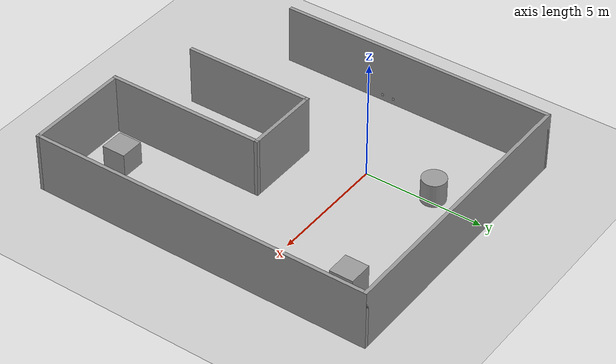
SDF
<sdf version="1.7">
 <world name="default">
  <light name="sun" type="directional">
   <pose>0 0 10 0 -0 0</pose>
   <diffuse>0.8 0.8 0.8 1</diffuse>
   <specular>0.2 0.2 0.2 1</specular>
   <attenuation>
    <range>1000</range>
    <constant>0.9</constant>
    <linear>0.01</linear>
    <quadratic>0.001</quadratic>
   </attenuation>
   <direction>-0.5 0.1 -0.9</direction>
   <spot><inner_angle>0</inner_angle><outer_angle>0</outer_angle><falloff>0</falloff></spot>
  </light>
  <model name="ground_plane">
   <static>1</static>
   <link name="link">
    <collision name="collision">
     <geometry><plane><normal>0 0 1</normal><size>100 100</size></plane></geometry>
     <surface><friction><ode><mu>100</mu><mu2>50</mu2></ode></friction></surface>
    </collision>
    <visual name="visual">
     <cast_shadows>0</cast_shadows>
     <geometry><plane><normal>0 0 1</normal><size>100 100</size></plane></geometry>
     <material>
      <script><uri>file://media/materials/scripts/gazebo.material</uri><name>Gazebo/Grey</name></script>
     </material>
    </visual>
   </link>
  </model>
  <gravity>0 0 -9.8</gravity>
  <magnetic_field>6e-06 2.3e-05 -4.2e-05</magnetic_field>
  <atmosphere type="adiabatic"/>
  <physics type="ode">
   <max_step_size>0.001</max_step_size>
   <real_time_factor>1</real_time_factor>
   <real_time_update_rate>1000</real_time_update_rate>
  </physics>
  <scene><ambient>0.4 0.4 0.4 1</ambient><background>0.7 0.7 0.7 1</background><shadows>1</shadows></scene>
  <spherical_coordinates>
   <surface_model>EARTH_WGS84</surface_model>
   <latitude_deg>0</latitude_deg>
   <longitude_deg>0</longitude_deg>
   <elevation>0</elevation>
   <heading_deg>0</heading_deg>
  </spherical_coordinates>
  <model name="world_room">
   <pose>1.72917 -2.0221 0 0 -0 0</pose>
   <link name="Wall_0">
    <collision name="Wall_0_Collision">
     <geometry><box><size>11.75 0.15 2.5</size></box></geometry>
     <pose>0 0 1.25 0 -0 0</pose>
    </collision>
    <visual name="Wall_0_Visual">
     <pose>0 0 1.25 0 -0 0</pose>
     <geometry><box><size>11.75 0.15 2.5</size></box></geometry>
     <material>
      <script><uri>file://media/materials/scripts/gazebo.material</uri><name>Gazebo/Grey</name></script>
      <ambient>1 1 1 1</ambient>
     </material>
     <meta><layer>0</layer></meta>
    </visual>
    <pose>-5.925 1.375 0 0 -0 1.5708</pose>
   </link>
   <link name="link1">
    <visual name="visual">
     <pose>-5.8 0 0.3 0 0 0</pose>
     <geometry><box><size>0.00001 0.1 0.1</size></box></geometry>
     <material>
      <script>
       <uri>model://ar_targ/materials/scripts1</uri>
       <uri>model://ar_targ/materials/textures1</uri>
       <name>Artag/Artag0</name>
      </script>
     </material>
    </visual>
   </link>
   <joint type="fixed" name="link1joint">
    <pose>0 0 0.5 0 0 0</pose>
    <child>link1</child>
    <parent>Wall_0</parent>
   </joint>
   <link name="link2">
    <visual name="visual">
     <pose>-5.8 0.5 0.3 0 0 0</pose>
     <geometry><box><size>0.00001 0.1 0.1</size></box></geometry>
     <material>
      <script>
       <uri>model://ar_targ/materials/scripts1</uri>
       <uri>model://ar_targ/materials/textures1</uri>
       <name>Artag/Artag1</name>
      </script>
     </material>
    </visual>
   </link>
   <joint type="fixed" name="link2joint">
    <pose>0 0.4 0.5 0 0 0</pose>
    <child>link2</child>
    <parent>Wall_0</parent>
   </joint>
   <link name="Wall_1">
    <collision name="Wall_1_Collision">
     <geometry><box><size>12 0.15 2.5</size></box></geometry>
     <pose>0 0 1.25 0 -0 0</pose>
    </collision>
    <visual name="Wall_1_Visual">
     <pose>0 0 1.25 0 -0 0</pose>
     <geometry><box><size>12 0.15 2.5</size></box></geometry>
     <material>
      <script><uri>file://media/materials/scripts/gazebo.material</uri><name>Gazebo/Grey</name></script>
      <ambient>1 1 1 1</ambient>
     </material>
     <meta><layer>0</layer></meta>
    </visual>
    <pose>0 7.175 0 0 -0 0</pose>
   </link>
   <link name="Wall_2">
    <collision name="Wall_2_Collision">
     <geometry><box><size>14.5 0.15 2.5</size></box></geometry>
     <pose>0 0 1.25 0 -0 0</pose>
    </collision>
    <visual name="Wall_2_Visual">
     <pose>0 0 1.25 0 -0 0</pose>
     <geometry><box><size>14.5 0.15 2.5</size></box></geometry>
     <material>
      <script><uri>file://media/materials/scripts/gazebo.material</uri><name>Gazebo/Grey</name></script>
      <ambient>1 1 1 1</ambient>
     </material>
     <meta><layer>0</layer></meta>
    </visual>
    <pose>5.925 -0 0 0 -0 -1.5708</pose>
   </link>
   <link name="Wall_3">
    <collision name="Wall_3_Collision">
     <geometry><box><size>4.5 0.15 2.5</size></box></geometry>
     <pose>0 0 1.25 0 -0 0</pose>
    </collision>
    <visual name="Wall_3_Visual">
     <pose>0 0 1.25 0 -0 0</pose>
     <geometry><box><size>4.5 0.15 2.5</size></box></geometry>
     <material>
      <script><uri>file://media/materials/scripts/gazebo.material</uri><name>Gazebo/Grey</name></script>
      <ambient>1 1 1 1</ambient>
     </material>
     <meta><layer>0</layer></meta>
    </visual>
    <pose>3.75 -7.175 0 0 -0 3.14159</pose>
   </link>
   <link name="Wall_4">
    <collision name="Wall_4_Collision">
     <geometry><box><size>6.75 0.15 2.5</size></box></geometry>
     <pose>0 0 1.25 0 -0 0</pose>
    </collision>
    <visual name="Wall_4_Visual">
     <pose>0 0 1.25 0 -0 0</pose>
     <geometry><box><size>6.75 0.15 2.5</size></box></geometry>
     <material>
      <script><uri>file://media/materials/scripts/gazebo.material</uri><name>Gazebo/Grey</name></script>
      <ambient>1 1 1 1</ambient>
     </material>
     <meta><layer>0</layer></meta>
    </visual>
    <pose>1.575 -3.875 0 0 -0 1.5708</pose>
   </link>
   <link name="Wall_5">
    <collision name="Wall_5_Collision">
     <geometry><box><size>3.25 0.15 2.5</size></box></geometry>
     <pose>0 0 1.25 0 -0 0</pose>
    </collision>
    <visual name="Wall_5_Visual">
     <pose>0 0 1.25 0 -0 0</pose>
     <geometry><box><size>3.25 0.15 2.5</size></box></geometry>
     <material>
      <script><uri>file://media/materials/scripts/gazebo.material</uri><name>Gazebo/Grey</name></script>
      <ambient>1 1 1 1</ambient>
     </material>
     <meta><layer>0</layer></meta>
    </visual>
    <pose>0.025 -0.575 0 0 -0 3.14159</pose>
   </link>
   <link name="Wall_6">
    <collision name="Wall_6_Collision">
     <geometry><box><size>5.5 0.15 2.5</size></box></geometry>
     <pose>0 0 1.25 0 -0 0</pose>
    </collision>
    <visual name="Wall_6_Visual">
     <pose>0 0 1.25 0 -0 0</pose>
     <geometry><box><size>5.5 0.15 2.5</size></box></geometry>
     <material>
      <script><uri>file://media/materials/scripts/gazebo.material</uri><name>Gazebo/Grey</name></script>
      <ambient>1 1 1 1</ambient>
     </material>
     <meta><layer>0</layer></meta>
    </visual>
    <pose>-1.525 -3.25 0 0 -0 -1.5708</pose>
   </link>
   <static>1</static>
  </model>
  <model name="unit_cylinder">
   <pose>-0.256506 2.79765 0.499997 3e-06 4e-06 -0</pose>
   <link name="link">
    <inertial>
     <mass>1</mass>
     <inertia><ixx>0.145833</ixx><ixy>0</ixy><ixz>0</ixz><iyy>0.145833</iyy><iyz>0</iyz><izz>0.125</izz></inertia>
    </inertial>
    <collision name="collision">
     <geometry><cylinder><radius>0.5</radius><length>1</length></cylinder></geometry>
    </collision>
    <visual name="visual">
     <geometry><cylinder><radius>0.5</radius><length>1</length></cylinder></geometry>
     <material>
      <script><name>Gazebo/Grey</name><uri>file://media/materials/scripts/gazebo.material</uri></script>
     </material>
    </visual>
   </link>
  </model>
  <model name="unit_box">
   <pose>5.60532 3.08268 0.499995 -1e-05 -0 0</pose>
   <link name="link">
    <inertial>
     <mass>1</mass>
     <inertia>
      <ixx>0.166667</ixx>
      <ixy>0</ixy>
      <ixz>0</ixz>
      <iyy>0.166667</iyy>
      <iyz>0</iyz>
      <izz>0.166667</izz>
     </inertia>
    </inertial>
    <collision name="collision"><geometry><box><size>1 1 1</size></box></geometry></collision>
    <visual name="visual">
     <geometry><box><size>1 1 1</size></box></geometry>
     <material>
      <script><name>Gazebo/Grey</name><uri>file://media/materials/scripts/gazebo.material</uri></script>
     </material>
    </visual>
   </link>
  </model>
  <model name="unit_box_0">
   <pose>4.88603 -7.68086 0.5 0 -0 0</pose>
   <link name="link">
    <inertial>
     <mass>1</mass>
     <inertia>
      <ixx>0.166667</ixx>
      <ixy>0</ixy>
      <ixz>0</ixz>
      <iyy>0.166667</iyy>
      <iyz>0</iyz>
      <izz>0.166667</izz>
     </inertia>
    </inertial>
    <collision name="collision"><geometry><box><size>1 1 1</size></box></geometry></collision>
    <visual name="visual">
     <geometry><box><size>1 1 1</size></box></geometry>
     <material>
      <script><name>Gazebo/Grey</name><uri>file://media/materials/scripts/gazebo.material</uri></script>
     </material>
    </visual>
   </link>
  </model>
 </world>
</sdf>
